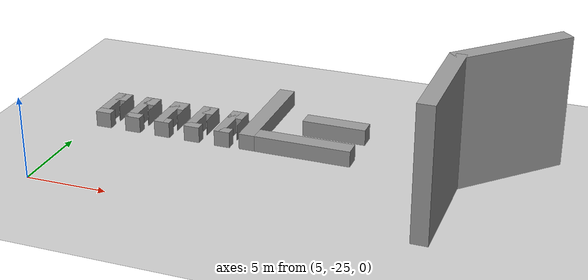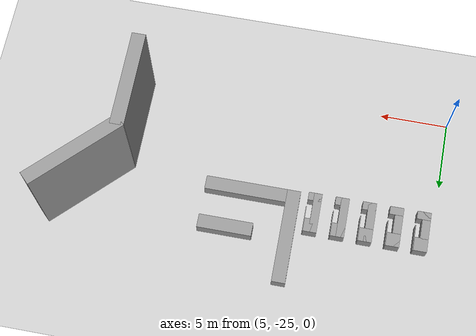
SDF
<sdf version="1.6">
 <world name="default">
  <model name="ground_plane">
   <static>1</static>
   <link name="link">
    <collision name="collision">
     <geometry><plane><normal>0 0 1</normal><size>100 100</size></plane></geometry>
     <surface>
      <contact><collide_bitmask>65535</collide_bitmask></contact>
      <friction><ode><mu>100</mu><mu2>50</mu2></ode></friction>
     </surface>
    </collision>
    <visual name="visual">
     <cast_shadows>0</cast_shadows>
     <geometry><plane><normal>0 0 1</normal><size>100 100</size></plane></geometry>
     <material>
      <script><uri>file://media/materials/scripts/gazebo.material</uri><name>Gazebo/Grey</name></script>
     </material>
    </visual>
   </link>
  </model>
  <model name="Cube_6">
   <link name="link_1">
    <inertial>
     <mass>1</mass>
     <inertia>
      <ixx>0.166667</ixx>
      <ixy>0</ixy>
      <ixz>0</ixz>
      <iyy>0.166667</iyy>
      <iyz>0</iyz>
      <izz>0.166667</izz>
     </inertia>
    </inertial>
    <visual name="visual">
     <geometry><box><size>1 7 1</size></box></geometry>
     <material>
      <lighting>1</lighting>
      <script><uri>file://media/materials/scripts/gazebo.material</uri><name>Gazebo/Grey</name></script>
     </material>
    </visual>
    <collision name="collision">
     <geometry><box><size>1 7 1</size></box></geometry>
     <surface>
      <friction>
       <ode><mu>1</mu><mu2>1</mu2><fdir1>0 0 0</fdir1><slip1>0</slip1><slip2>0</slip2></ode>
       <torsional>
        <coefficient>1</coefficient>
        <patch_radius>0</patch_radius>
        <surface_radius>0</surface_radius>
        <use_patch_radius>1</use_patch_radius>
        <ode><slip>0</slip></ode>
       </torsional>
      </friction>
      <bounce><restitution_coefficient>0</restitution_coefficient><threshold>1e+06</threshold></bounce>
      <contact>
       <collide_without_contact>0</collide_without_contact>
       <collide_without_contact_bitmask>1</collide_without_contact_bitmask>
       <collide_bitmask>1</collide_bitmask>
       <ode>
        <soft_cfm>0</soft_cfm>
        <soft_erp>0.2</soft_erp>
        <kp>1e+13</kp>
        <kd>1</kd>
        <max_vel>0.01</max_vel>
        <min_depth>0</min_depth>
       </ode>
       <bullet>
        <split_impulse>1</split_impulse>
        <split_impulse_penetration_threshold>-0.01</split_impulse_penetration_threshold>
        <soft_cfm>0</soft_cfm>
        <soft_erp>0.2</soft_erp>
        <kp>1e+13</kp>
        <kd>1</kd>
       </bullet>
      </contact>
     </surface>
    </collision>
   </link>
   <static>1</static>
   <pose>15.5012 -14 0.499811 0 -0 0</pose>
  </model>
  <model name="Cube_6_clone">
   <link name="link_1">
    <inertial>
     <mass>1</mass>
     <inertia>
      <ixx>0.166667</ixx>
      <ixy>0</ixy>
      <ixz>0</ixz>
      <iyy>0.166667</iyy>
      <iyz>0</iyz>
      <izz>0.166667</izz>
     </inertia>
    </inertial>
    <visual name="visual">
     <geometry><box><size>1 6.00505 1</size></box></geometry>
     <material>
      <lighting>1</lighting>
      <script><uri>file://media/materials/scripts/gazebo.material</uri><name>Gazebo/Grey</name></script>
     </material>
    </visual>
    <collision name="collision">
     <geometry><box><size>1 6.00505 1</size></box></geometry>
     <surface>
      <friction>
       <ode><mu>1</mu><mu2>1</mu2><fdir1>0 0 0</fdir1><slip1>0</slip1><slip2>0</slip2></ode>
       <torsional>
        <coefficient>1</coefficient>
        <patch_radius>0</patch_radius>
        <surface_radius>0</surface_radius>
        <use_patch_radius>1</use_patch_radius>
        <ode><slip>0</slip></ode>
       </torsional>
      </friction>
      <bounce><restitution_coefficient>0</restitution_coefficient><threshold>1e+06</threshold></bounce>
      <contact>
       <collide_without_contact>0</collide_without_contact>
       <collide_without_contact_bitmask>1</collide_without_contact_bitmask>
       <collide_bitmask>1</collide_bitmask>
       <ode>
        <soft_cfm>0</soft_cfm>
        <soft_erp>0.2</soft_erp>
        <kp>1e+13</kp>
        <kd>1</kd>
        <max_vel>0.01</max_vel>
        <min_depth>0</min_depth>
       </ode>
       <bullet>
        <split_impulse>1</split_impulse>
        <split_impulse_penetration_threshold>-0.01</split_impulse_penetration_threshold>
        <soft_cfm>0</soft_cfm>
        <soft_erp>0.2</soft_erp>
        <kp>1e+13</kp>
        <kd>1</kd>
       </bullet>
      </contact>
     </surface>
    </collision>
   </link>
   <static>1</static>
   <pose>19 -17 0.499811 0 0 -1.5708</pose>
  </model>
  <model name="Cube_7">
   <link name="link_1">
    <inertial>
     <mass>1</mass>
     <inertia>
      <ixx>0.166667</ixx>
      <ixy>0</ixy>
      <ixz>0</ixz>
      <iyy>0.166667</iyy>
      <iyz>0</iyz>
      <izz>0.166667</izz>
     </inertia>
    </inertial>
    <visual name="visual">
     <geometry><box><size>4 1 1</size></box></geometry>
     <material>
      <lighting>1</lighting>
      <script><uri>file://media/materials/scripts/gazebo.material</uri><name>Gazebo/Grey</name></script>
     </material>
    </visual>
    <collision name="collision">
     <geometry><box><size>4 1 1</size></box></geometry>
     <surface>
      <friction>
       <ode><mu>1</mu><mu2>1</mu2><fdir1>0 0 0</fdir1><slip1>0</slip1><slip2>0</slip2></ode>
       <torsional>
        <coefficient>1</coefficient>
        <patch_radius>0</patch_radius>
        <surface_radius>0</surface_radius>
        <use_patch_radius>1</use_patch_radius>
        <ode><slip>0</slip></ode>
       </torsional>
      </friction>
      <bounce><restitution_coefficient>0</restitution_coefficient><threshold>1e+06</threshold></bounce>
      <contact>
       <collide_without_contact>0</collide_without_contact>
       <collide_without_contact_bitmask>1</collide_without_contact_bitmask>
       <collide_bitmask>1</collide_bitmask>
       <ode>
        <soft_cfm>0</soft_cfm>
        <soft_erp>0.2</soft_erp>
        <kp>1e+13</kp>
        <kd>1</kd>
        <max_vel>0.01</max_vel>
        <min_depth>0</min_depth>
       </ode>
       <bullet>
        <split_impulse>1</split_impulse>
        <split_impulse_penetration_threshold>-0.01</split_impulse_penetration_threshold>
        <soft_cfm>0</soft_cfm>
        <soft_erp>0.2</soft_erp>
        <kp>1e+13</kp>
        <kd>1</kd>
       </bullet>
      </contact>
     </surface>
    </collision>
   </link>
   <static>1</static>
   <pose>20 -14 0.498057 0 -0 0</pose>
  </model>
  <model name="tall_shelf_0_clone">
   <link name="link_0">
    <inertial>
     <mass>32</mass>
     <inertia><ixx>45.3334</ixx><ixy>0</ixy><ixz>0</ixz><iyy>213.334</iyy><iyz>0</iyz><izz>173.334</izz></inertia>
    </inertial>
    <visual name="visual">
     <geometry><box><size>6.99933 1 8</size></box></geometry>
     <material>
      <lighting>1</lighting>
      <script><uri>file://media/materials/scripts/gazebo.material</uri><name>Gazebo/Grey</name></script>
     </material>
    </visual>
    <collision name="collision">
     <geometry><box><size>6.99933 1 8</size></box></geometry>
     <surface>
      <friction>
       <ode><mu>1</mu><mu2>1</mu2><fdir1>0 0 0</fdir1><slip1>0</slip1><slip2>0</slip2></ode>
       <torsional>
        <coefficient>1</coefficient>
        <patch_radius>0</patch_radius>
        <surface_radius>0</surface_radius>
        <use_patch_radius>1</use_patch_radius>
        <ode><slip>0</slip></ode>
       </torsional>
      </friction>
      <bounce><restitution_coefficient>0</restitution_coefficient><threshold>1e+06</threshold></bounce>
      <contact>
       <collide_without_contact>0</collide_without_contact>
       <collide_without_contact_bitmask>1</collide_without_contact_bitmask>
       <collide_bitmask>1</collide_bitmask>
       <ode>
        <soft_cfm>0</soft_cfm>
        <soft_erp>0.2</soft_erp>
        <kp>1e+13</kp>
        <kd>1</kd>
        <max_vel>0.01</max_vel>
        <min_depth>0</min_depth>
       </ode>
       <bullet>
        <split_impulse>1</split_impulse>
        <split_impulse_penetration_threshold>-0.01</split_impulse_penetration_threshold>
        <soft_cfm>0</soft_cfm>
        <soft_erp>0.2</soft_erp>
        <kp>1e+13</kp>
        <kd>1</kd>
       </bullet>
      </contact>
     </surface>
    </collision>
   </link>
   <static>1</static>
   <pose>28 -21 4 0 0 -1.5708</pose>
  </model>
  <model name="tall_shelf_0_clone_clone">
   <link name="link_0">
    <inertial>
     <mass>32</mass>
     <inertia><ixx>45.3334</ixx><ixy>0</ixy><ixz>0</ixz><iyy>213.334</iyy><iyz>0</iyz><izz>173.334</izz></inertia>
    </inertial>
    <visual name="visual">
     <geometry><box><size>7.49195 1 8</size></box></geometry>
     <material>
      <lighting>1</lighting>
      <script><uri>file://media/materials/scripts/gazebo.material</uri><name>Gazebo/Grey</name></script>
     </material>
    </visual>
    <collision name="collision">
     <geometry><box><size>7.49195 1 8</size></box></geometry>
     <surface>
      <friction>
       <ode><mu>1</mu><mu2>1</mu2><fdir1>0 0 0</fdir1><slip1>0</slip1><slip2>0</slip2></ode>
       <torsional>
        <coefficient>1</coefficient>
        <patch_radius>0</patch_radius>
        <surface_radius>0</surface_radius>
        <use_patch_radius>1</use_patch_radius>
        <ode><slip>0</slip></ode>
       </torsional>
      </friction>
      <bounce><restitution_coefficient>0</restitution_coefficient><threshold>1e+06</threshold></bounce>
      <contact>
       <collide_without_contact>0</collide_without_contact>
       <collide_without_contact_bitmask>1</collide_without_contact_bitmask>
       <collide_bitmask>1</collide_bitmask>
       <ode>
        <soft_cfm>0</soft_cfm>
        <soft_erp>0.2</soft_erp>
        <kp>1e+13</kp>
        <kd>1</kd>
        <max_vel>0.01</max_vel>
        <min_depth>0</min_depth>
       </ode>
       <bullet>
        <split_impulse>1</split_impulse>
        <split_impulse_penetration_threshold>-0.01</split_impulse_penetration_threshold>
        <soft_cfm>0</soft_cfm>
        <soft_erp>0.2</soft_erp>
        <kp>1e+13</kp>
        <kd>1</kd>
       </bullet>
      </contact>
     </surface>
    </collision>
   </link>
   <static>1</static>
   <pose>30.4899 -15.2274 4 0 0 -2.3562</pose>
  </model>
  <model name="checkout_lane">
   <link name="link_0">
    <inertial>
     <mass>1.78918</mass>
     <inertia><ixx>1.49098</ixx><ixy>0</ixy><ixz>0</ixz><iyy>0.202135</iyy><iyz>0</iyz><izz>1.39492</izz></inertia>
    </inertial>
    <pose>-0.28217 -0.089875 0 0 -0 0</pose>
    <visual name="visual">
     <geometry><box><size>0.596422 3 1</size></box></geometry>
     <material>
      <lighting>1</lighting>
      <script><uri>file://media/materials/scripts/gazebo.material</uri><name>Gazebo/Grey</name></script>
     </material>
    </visual>
    <collision name="collision">
     <geometry><box><size>0.596422 3 1</size></box></geometry>
     <surface>
      <friction>
       <ode><mu>1</mu><mu2>1</mu2><fdir1>0 0 0</fdir1><slip1>0</slip1><slip2>0</slip2></ode>
       <torsional>
        <coefficient>1</coefficient>
        <patch_radius>0</patch_radius>
        <surface_radius>0</surface_radius>
        <use_patch_radius>1</use_patch_radius>
        <ode><slip>0</slip></ode>
       </torsional>
      </friction>
      <bounce><restitution_coefficient>0</restitution_coefficient><threshold>1e+06</threshold></bounce>
      <contact>
       <collide_without_contact>0</collide_without_contact>
       <collide_without_contact_bitmask>1</collide_without_contact_bitmask>
       <collide_bitmask>1</collide_bitmask>
       <ode>
        <soft_cfm>0</soft_cfm>
        <soft_erp>0.2</soft_erp>
        <kp>1e+13</kp>
        <kd>1</kd>
        <max_vel>0.01</max_vel>
        <min_depth>0</min_depth>
       </ode>
       <bullet>
        <split_impulse>1</split_impulse>
        <split_impulse_penetration_threshold>-0.01</split_impulse_penetration_threshold>
        <soft_cfm>0</soft_cfm>
        <soft_erp>0.2</soft_erp>
        <kp>1e+13</kp>
        <kd>1</kd>
       </bullet>
      </contact>
     </surface>
    </collision>
   </link>
   <link name="link_1">
    <inertial>
     <mass>0.599725</mass>
     <inertia>
      <ixx>0.067952</ixx>
      <ixy>0</ixy>
      <ixz>0</ixz>
      <iyy>0.0999541</iyy>
      <iyz>0</iyz>
      <izz>0.067952</izz>
     </inertia>
    </inertial>
    <pose>-0.080941 -1.29052 0 0 -0 0</pose>
    <visual name="visual">
     <geometry><box><size>1 0.599721 1</size></box></geometry>
     <material>
      <lighting>1</lighting>
      <script><uri>file://media/materials/scripts/gazebo.material</uri><name>Gazebo/Grey</name></script>
     </material>
    </visual>
    <collision name="collision">
     <geometry><box><size>1 0.599721 1</size></box></geometry>
     <surface>
      <friction>
       <ode><mu>1</mu><mu2>1</mu2><fdir1>0 0 0</fdir1><slip1>0</slip1><slip2>0</slip2></ode>
       <torsional>
        <coefficient>1</coefficient>
        <patch_radius>0</patch_radius>
        <surface_radius>0</surface_radius>
        <use_patch_radius>1</use_patch_radius>
        <ode><slip>0</slip></ode>
       </torsional>
      </friction>
      <bounce><restitution_coefficient>0</restitution_coefficient><threshold>1e+06</threshold></bounce>
      <contact>
       <collide_without_contact>0</collide_without_contact>
       <collide_without_contact_bitmask>1</collide_without_contact_bitmask>
       <collide_bitmask>1</collide_bitmask>
       <ode>
        <soft_cfm>0</soft_cfm>
        <soft_erp>0.2</soft_erp>
        <kp>1e+13</kp>
        <kd>1</kd>
        <max_vel>0.01</max_vel>
        <min_depth>0</min_depth>
       </ode>
       <bullet>
        <split_impulse>1</split_impulse>
        <split_impulse_penetration_threshold>-0.01</split_impulse_penetration_threshold>
        <soft_cfm>0</soft_cfm>
        <soft_erp>0.2</soft_erp>
        <kp>1e+13</kp>
        <kd>1</kd>
       </bullet>
      </contact>
     </surface>
    </collision>
   </link>
   <link name="link_2">
    <inertial>
     <mass>1</mass>
     <inertia>
      <ixx>0.166667</ixx>
      <ixy>0</ixy>
      <ixz>0</ixz>
      <iyy>0.166667</iyy>
      <iyz>0</iyz>
      <izz>0.166667</izz>
     </inertia>
    </inertial>
    <pose>-0.079867 0.912971 0 0 -0 0</pose>
    <visual name="visual">
     <geometry><box><size>1 1 1</size></box></geometry>
     <material>
      <lighting>1</lighting>
      <script><uri>file://media/materials/scripts/gazebo.material</uri><name>Gazebo/Grey</name></script>
     </material>
    </visual>
    <collision name="collision">
     <geometry><box><size>1 1 1</size></box></geometry>
     <surface>
      <friction>
       <ode><mu>1</mu><mu2>1</mu2><fdir1>0 0 0</fdir1><slip1>0</slip1><slip2>0</slip2></ode>
       <torsional>
        <coefficient>1</coefficient>
        <patch_radius>0</patch_radius>
        <surface_radius>0</surface_radius>
        <use_patch_radius>1</use_patch_radius>
        <ode><slip>0</slip></ode>
       </torsional>
      </friction>
      <bounce><restitution_coefficient>0</restitution_coefficient><threshold>1e+06</threshold></bounce>
      <contact>
       <collide_without_contact>0</collide_without_contact>
       <collide_without_contact_bitmask>1</collide_without_contact_bitmask>
       <collide_bitmask>1</collide_bitmask>
       <ode>
        <soft_cfm>0</soft_cfm>
        <soft_erp>0.2</soft_erp>
        <kp>1e+13</kp>
        <kd>1</kd>
        <max_vel>0.01</max_vel>
        <min_depth>0</min_depth>
       </ode>
       <bullet>
        <split_impulse>1</split_impulse>
        <split_impulse_penetration_threshold>-0.01</split_impulse_penetration_threshold>
        <soft_cfm>0</soft_cfm>
        <soft_erp>0.2</soft_erp>
        <kp>1e+13</kp>
        <kd>1</kd>
       </bullet>
      </contact>
     </surface>
    </collision>
   </link>
   <link name="link_3">
    <inertial>
     <mass>0.0872941</mass>
     <inertia>
      <ixx>0.0332862</ixx>
      <ixy>0</ixy>
      <ixz>0</ixz>
      <iyy>0.00729008</iyy>
      <iyz>0</iyz>
      <izz>0.0260273</izz>
     </inertia>
    </inertial>
    <pose>0.442979 0.467403 0 0 -0 0</pose>
    <visual name="visual">
     <geometry><box><size>0.046273 1.89096 1</size></box></geometry>
     <material>
      <lighting>1</lighting>
      <script><uri>file://media/materials/scripts/gazebo.material</uri><name>Gazebo/Grey</name></script>
     </material>
    </visual>
    <collision name="collision">
     <geometry><box><size>0.046273 1.89096 1</size></box></geometry>
     <surface>
      <friction>
       <ode><mu>1</mu><mu2>1</mu2><fdir1>0 0 0</fdir1><slip1>0</slip1><slip2>0</slip2></ode>
       <torsional>
        <coefficient>1</coefficient>
        <patch_radius>0</patch_radius>
        <surface_radius>0</surface_radius>
        <use_patch_radius>1</use_patch_radius>
        <ode><slip>0</slip></ode>
       </torsional>
      </friction>
      <bounce><restitution_coefficient>0</restitution_coefficient><threshold>1e+06</threshold></bounce>
      <contact>
       <collide_without_contact>0</collide_without_contact>
       <collide_without_contact_bitmask>1</collide_without_contact_bitmask>
       <collide_bitmask>1</collide_bitmask>
       <ode>
        <soft_cfm>0</soft_cfm>
        <soft_erp>0.2</soft_erp>
        <kp>1e+13</kp>
        <kd>1</kd>
        <max_vel>0.01</max_vel>
        <min_depth>0</min_depth>
       </ode>
       <bullet>
        <split_impulse>1</split_impulse>
        <split_impulse_penetration_threshold>-0.01</split_impulse_penetration_threshold>
        <soft_cfm>0</soft_cfm>
        <soft_erp>0.2</soft_erp>
        <kp>1e+13</kp>
        <kd>1</kd>
       </bullet>
      </contact>
     </surface>
    </collision>
   </link>
   <static>1</static>
   <pose>14 -16 0.5 0 -0 0</pose>
  </model>
  <model name="checkout_lane_clone">
   <link name="link_0">
    <inertial>
     <mass>1.78918</mass>
     <inertia><ixx>1.49098</ixx><ixy>0</ixy><ixz>0</ixz><iyy>0.202135</iyy><iyz>0</iyz><izz>1.39492</izz></inertia>
    </inertial>
    <pose>-0.28217 -0.089875 0 0 -0 0</pose>
    <visual name="visual">
     <geometry><box><size>0.596422 3 1</size></box></geometry>
     <material>
      <lighting>1</lighting>
      <script><uri>file://media/materials/scripts/gazebo.material</uri><name>Gazebo/Grey</name></script>
     </material>
    </visual>
    <collision name="collision">
     <geometry><box><size>0.596422 3 1</size></box></geometry>
     <surface>
      <friction>
       <ode><mu>1</mu><mu2>1</mu2><fdir1>0 0 0</fdir1><slip1>0</slip1><slip2>0</slip2></ode>
       <torsional>
        <coefficient>1</coefficient>
        <patch_radius>0</patch_radius>
        <surface_radius>0</surface_radius>
        <use_patch_radius>1</use_patch_radius>
        <ode><slip>0</slip></ode>
       </torsional>
      </friction>
      <bounce><restitution_coefficient>0</restitution_coefficient><threshold>1e+06</threshold></bounce>
      <contact>
       <collide_without_contact>0</collide_without_contact>
       <collide_without_contact_bitmask>1</collide_without_contact_bitmask>
       <collide_bitmask>1</collide_bitmask>
       <ode>
        <soft_cfm>0</soft_cfm>
        <soft_erp>0.2</soft_erp>
        <kp>1e+13</kp>
        <kd>1</kd>
        <max_vel>0.01</max_vel>
        <min_depth>0</min_depth>
       </ode>
       <bullet>
        <split_impulse>1</split_impulse>
        <split_impulse_penetration_threshold>-0.01</split_impulse_penetration_threshold>
        <soft_cfm>0</soft_cfm>
        <soft_erp>0.2</soft_erp>
        <kp>1e+13</kp>
        <kd>1</kd>
       </bullet>
      </contact>
     </surface>
    </collision>
   </link>
   <link name="link_1">
    <inertial>
     <mass>0.599725</mass>
     <inertia>
      <ixx>0.067952</ixx>
      <ixy>0</ixy>
      <ixz>0</ixz>
      <iyy>0.0999541</iyy>
      <iyz>0</iyz>
      <izz>0.067952</izz>
     </inertia>
    </inertial>
    <pose>-0.080941 -1.29052 0 0 -0 0</pose>
    <visual name="visual">
     <geometry><box><size>1 0.599721 1</size></box></geometry>
     <material>
      <lighting>1</lighting>
      <script><uri>file://media/materials/scripts/gazebo.material</uri><name>Gazebo/Grey</name></script>
     </material>
    </visual>
    <collision name="collision">
     <geometry><box><size>1 0.599721 1</size></box></geometry>
     <surface>
      <friction>
       <ode><mu>1</mu><mu2>1</mu2><fdir1>0 0 0</fdir1><slip1>0</slip1><slip2>0</slip2></ode>
       <torsional>
        <coefficient>1</coefficient>
        <patch_radius>0</patch_radius>
        <surface_radius>0</surface_radius>
        <use_patch_radius>1</use_patch_radius>
        <ode><slip>0</slip></ode>
       </torsional>
      </friction>
      <bounce><restitution_coefficient>0</restitution_coefficient><threshold>1e+06</threshold></bounce>
      <contact>
       <collide_without_contact>0</collide_without_contact>
       <collide_without_contact_bitmask>1</collide_without_contact_bitmask>
       <collide_bitmask>1</collide_bitmask>
       <ode>
        <soft_cfm>0</soft_cfm>
        <soft_erp>0.2</soft_erp>
        <kp>1e+13</kp>
        <kd>1</kd>
        <max_vel>0.01</max_vel>
        <min_depth>0</min_depth>
       </ode>
       <bullet>
        <split_impulse>1</split_impulse>
        <split_impulse_penetration_threshold>-0.01</split_impulse_penetration_threshold>
        <soft_cfm>0</soft_cfm>
        <soft_erp>0.2</soft_erp>
        <kp>1e+13</kp>
        <kd>1</kd>
       </bullet>
      </contact>
     </surface>
    </collision>
   </link>
   <link name="link_2">
    <inertial>
     <mass>1</mass>
     <inertia>
      <ixx>0.166667</ixx>
      <ixy>0</ixy>
      <ixz>0</ixz>
      <iyy>0.166667</iyy>
      <iyz>0</iyz>
      <izz>0.166667</izz>
     </inertia>
    </inertial>
    <pose>-0.079867 0.912971 0 0 -0 0</pose>
    <visual name="visual">
     <geometry><box><size>1 1 1</size></box></geometry>
     <material>
      <lighting>1</lighting>
      <script><uri>file://media/materials/scripts/gazebo.material</uri><name>Gazebo/Grey</name></script>
     </material>
    </visual>
    <collision name="collision">
     <geometry><box><size>1 1 1</size></box></geometry>
     <surface>
      <friction>
       <ode><mu>1</mu><mu2>1</mu2><fdir1>0 0 0</fdir1><slip1>0</slip1><slip2>0</slip2></ode>
       <torsional>
        <coefficient>1</coefficient>
        <patch_radius>0</patch_radius>
        <surface_radius>0</surface_radius>
        <use_patch_radius>1</use_patch_radius>
        <ode><slip>0</slip></ode>
       </torsional>
      </friction>
      <bounce><restitution_coefficient>0</restitution_coefficient><threshold>1e+06</threshold></bounce>
      <contact>
       <collide_without_contact>0</collide_without_contact>
       <collide_without_contact_bitmask>1</collide_without_contact_bitmask>
       <collide_bitmask>1</collide_bitmask>
       <ode>
        <soft_cfm>0</soft_cfm>
        <soft_erp>0.2</soft_erp>
        <kp>1e+13</kp>
        <kd>1</kd>
        <max_vel>0.01</max_vel>
        <min_depth>0</min_depth>
       </ode>
       <bullet>
        <split_impulse>1</split_impulse>
        <split_impulse_penetration_threshold>-0.01</split_impulse_penetration_threshold>
        <soft_cfm>0</soft_cfm>
        <soft_erp>0.2</soft_erp>
        <kp>1e+13</kp>
        <kd>1</kd>
       </bullet>
      </contact>
     </surface>
    </collision>
   </link>
   <link name="link_3">
    <inertial>
     <mass>0.0872941</mass>
     <inertia>
      <ixx>0.0332862</ixx>
      <ixy>0</ixy>
      <ixz>0</ixz>
      <iyy>0.00729008</iyy>
      <iyz>0</iyz>
      <izz>0.0260273</izz>
     </inertia>
    </inertial>
    <pose>0.442979 0.467403 0 0 -0 0</pose>
    <visual name="visual">
     <geometry><box><size>0.046273 1.89096 1</size></box></geometry>
     <material>
      <lighting>1</lighting>
      <script><uri>file://media/materials/scripts/gazebo.material</uri><name>Gazebo/Grey</name></script>
     </material>
    </visual>
    <collision name="collision">
     <geometry><box><size>0.046273 1.89096 1</size></box></geometry>
     <surface>
      <friction>
       <ode><mu>1</mu><mu2>1</mu2><fdir1>0 0 0</fdir1><slip1>0</slip1><slip2>0</slip2></ode>
       <torsional>
        <coefficient>1</coefficient>
        <patch_radius>0</patch_radius>
        <surface_radius>0</surface_radius>
        <use_patch_radius>1</use_patch_radius>
        <ode><slip>0</slip></ode>
       </torsional>
      </friction>
      <bounce><restitution_coefficient>0</restitution_coefficient><threshold>1e+06</threshold></bounce>
      <contact>
       <collide_without_contact>0</collide_without_contact>
       <collide_without_contact_bitmask>1</collide_without_contact_bitmask>
       <collide_bitmask>1</collide_bitmask>
       <ode>
        <soft_cfm>0</soft_cfm>
        <soft_erp>0.2</soft_erp>
        <kp>1e+13</kp>
        <kd>1</kd>
        <max_vel>0.01</max_vel>
        <min_depth>0</min_depth>
       </ode>
       <bullet>
        <split_impulse>1</split_impulse>
        <split_impulse_penetration_threshold>-0.01</split_impulse_penetration_threshold>
        <soft_cfm>0</soft_cfm>
        <soft_erp>0.2</soft_erp>
        <kp>1e+13</kp>
        <kd>1</kd>
       </bullet>
      </contact>
     </surface>
    </collision>
   </link>
   <static>1</static>
   <pose>12 -16 0.5 0 -0 0</pose>
  </model>
  <model name="checkout_lane_clone_0">
   <link name="link_0">
    <inertial>
     <mass>1.78918</mass>
     <inertia><ixx>1.49098</ixx><ixy>0</ixy><ixz>0</ixz><iyy>0.202135</iyy><iyz>0</iyz><izz>1.39492</izz></inertia>
    </inertial>
    <pose>-0.28217 -0.089875 0 0 -0 0</pose>
    <visual name="visual">
     <geometry><box><size>0.596422 3 1</size></box></geometry>
     <material>
      <lighting>1</lighting>
      <script><uri>file://media/materials/scripts/gazebo.material</uri><name>Gazebo/Grey</name></script>
     </material>
    </visual>
    <collision name="collision">
     <geometry><box><size>0.596422 3 1</size></box></geometry>
     <surface>
      <friction>
       <ode><mu>1</mu><mu2>1</mu2><fdir1>0 0 0</fdir1><slip1>0</slip1><slip2>0</slip2></ode>
       <torsional>
        <coefficient>1</coefficient>
        <patch_radius>0</patch_radius>
        <surface_radius>0</surface_radius>
        <use_patch_radius>1</use_patch_radius>
        <ode><slip>0</slip></ode>
       </torsional>
      </friction>
      <bounce><restitution_coefficient>0</restitution_coefficient><threshold>1e+06</threshold></bounce>
      <contact>
       <collide_without_contact>0</collide_without_contact>
       <collide_without_contact_bitmask>1</collide_without_contact_bitmask>
       <collide_bitmask>1</collide_bitmask>
       <ode>
        <soft_cfm>0</soft_cfm>
        <soft_erp>0.2</soft_erp>
        <kp>1e+13</kp>
        <kd>1</kd>
        <max_vel>0.01</max_vel>
        <min_depth>0</min_depth>
       </ode>
       <bullet>
        <split_impulse>1</split_impulse>
        <split_impulse_penetration_threshold>-0.01</split_impulse_penetration_threshold>
        <soft_cfm>0</soft_cfm>
        <soft_erp>0.2</soft_erp>
        <kp>1e+13</kp>
        <kd>1</kd>
       </bullet>
      </contact>
     </surface>
    </collision>
   </link>
   <link name="link_1">
    <inertial>
     <mass>0.599725</mass>
     <inertia>
      <ixx>0.067952</ixx>
      <ixy>0</ixy>
      <ixz>0</ixz>
      <iyy>0.0999541</iyy>
      <iyz>0</iyz>
      <izz>0.067952</izz>
     </inertia>
    </inertial>
    <pose>-0.080941 -1.29052 0 0 -0 0</pose>
    <visual name="visual">
     <geometry><box><size>1 0.599721 1</size></box></geometry>
     <material>
      <lighting>1</lighting>
      <script><uri>file://media/materials/scripts/gazebo.material</uri><name>Gazebo/Grey</name></script>
     </material>
    </visual>
    <collision name="collision">
     <geometry><box><size>1 0.599721 1</size></box></geometry>
     <surface>
      <friction>
       <ode><mu>1</mu><mu2>1</mu2><fdir1>0 0 0</fdir1><slip1>0</slip1><slip2>0</slip2></ode>
       <torsional>
        <coefficient>1</coefficient>
        <patch_radius>0</patch_radius>
        <surface_radius>0</surface_radius>
        <use_patch_radius>1</use_patch_radius>
        <ode><slip>0</slip></ode>
       </torsional>
      </friction>
      <bounce><restitution_coefficient>0</restitution_coefficient><threshold>1e+06</threshold></bounce>
      <contact>
       <collide_without_contact>0</collide_without_contact>
       <collide_without_contact_bitmask>1</collide_without_contact_bitmask>
       <collide_bitmask>1</collide_bitmask>
       <ode>
        <soft_cfm>0</soft_cfm>
        <soft_erp>0.2</soft_erp>
        <kp>1e+13</kp>
        <kd>1</kd>
        <max_vel>0.01</max_vel>
        <min_depth>0</min_depth>
       </ode>
       <bullet>
        <split_impulse>1</split_impulse>
        <split_impulse_penetration_threshold>-0.01</split_impulse_penetration_threshold>
        <soft_cfm>0</soft_cfm>
        <soft_erp>0.2</soft_erp>
        <kp>1e+13</kp>
        <kd>1</kd>
       </bullet>
      </contact>
     </surface>
    </collision>
   </link>
   <link name="link_2">
    <inertial>
     <mass>1</mass>
     <inertia>
      <ixx>0.166667</ixx>
      <ixy>0</ixy>
      <ixz>0</ixz>
      <iyy>0.166667</iyy>
      <iyz>0</iyz>
      <izz>0.166667</izz>
     </inertia>
    </inertial>
    <pose>-0.079867 0.912971 0 0 -0 0</pose>
    <visual name="visual">
     <geometry><box><size>1 1 1</size></box></geometry>
     <material>
      <lighting>1</lighting>
      <script><uri>file://media/materials/scripts/gazebo.material</uri><name>Gazebo/Grey</name></script>
     </material>
    </visual>
    <collision name="collision">
     <geometry><box><size>1 1 1</size></box></geometry>
     <surface>
      <friction>
       <ode><mu>1</mu><mu2>1</mu2><fdir1>0 0 0</fdir1><slip1>0</slip1><slip2>0</slip2></ode>
       <torsional>
        <coefficient>1</coefficient>
        <patch_radius>0</patch_radius>
        <surface_radius>0</surface_radius>
        <use_patch_radius>1</use_patch_radius>
        <ode><slip>0</slip></ode>
       </torsional>
      </friction>
      <bounce><restitution_coefficient>0</restitution_coefficient><threshold>1e+06</threshold></bounce>
      <contact>
       <collide_without_contact>0</collide_without_contact>
       <collide_without_contact_bitmask>1</collide_without_contact_bitmask>
       <collide_bitmask>1</collide_bitmask>
       <ode>
        <soft_cfm>0</soft_cfm>
        <soft_erp>0.2</soft_erp>
        <kp>1e+13</kp>
        <kd>1</kd>
        <max_vel>0.01</max_vel>
        <min_depth>0</min_depth>
       </ode>
       <bullet>
        <split_impulse>1</split_impulse>
        <split_impulse_penetration_threshold>-0.01</split_impulse_penetration_threshold>
        <soft_cfm>0</soft_cfm>
        <soft_erp>0.2</soft_erp>
        <kp>1e+13</kp>
        <kd>1</kd>
       </bullet>
      </contact>
     </surface>
    </collision>
   </link>
   <link name="link_3">
    <inertial>
     <mass>0.0872941</mass>
     <inertia>
      <ixx>0.0332862</ixx>
      <ixy>0</ixy>
      <ixz>0</ixz>
      <iyy>0.00729008</iyy>
      <iyz>0</iyz>
      <izz>0.0260273</izz>
     </inertia>
    </inertial>
    <pose>0.442979 0.467403 0 0 -0 0</pose>
    <visual name="visual">
     <geometry><box><size>0.046273 1.89096 1</size></box></geometry>
     <material>
      <lighting>1</lighting>
      <script><uri>file://media/materials/scripts/gazebo.material</uri><name>Gazebo/Grey</name></script>
     </material>
    </visual>
    <collision name="collision">
     <geometry><box><size>0.046273 1.89096 1</size></box></geometry>
     <surface>
      <friction>
       <ode><mu>1</mu><mu2>1</mu2><fdir1>0 0 0</fdir1><slip1>0</slip1><slip2>0</slip2></ode>
       <torsional>
        <coefficient>1</coefficient>
        <patch_radius>0</patch_radius>
        <surface_radius>0</surface_radius>
        <use_patch_radius>1</use_patch_radius>
        <ode><slip>0</slip></ode>
       </torsional>
      </friction>
      <bounce><restitution_coefficient>0</restitution_coefficient><threshold>1e+06</threshold></bounce>
      <contact>
       <collide_without_contact>0</collide_without_contact>
       <collide_without_contact_bitmask>1</collide_without_contact_bitmask>
       <collide_bitmask>1</collide_bitmask>
       <ode>
        <soft_cfm>0</soft_cfm>
        <soft_erp>0.2</soft_erp>
        <kp>1e+13</kp>
        <kd>1</kd>
        <max_vel>0.01</max_vel>
        <min_depth>0</min_depth>
       </ode>
       <bullet>
        <split_impulse>1</split_impulse>
        <split_impulse_penetration_threshold>-0.01</split_impulse_penetration_threshold>
        <soft_cfm>0</soft_cfm>
        <soft_erp>0.2</soft_erp>
        <kp>1e+13</kp>
        <kd>1</kd>
       </bullet>
      </contact>
     </surface>
    </collision>
   </link>
   <static>1</static>
   <pose>10 -16 0.5 0 -0 0</pose>
  </model>
  <model name="checkout_lane_clone_1">
   <link name="link_0">
    <inertial>
     <mass>1.78918</mass>
     <inertia><ixx>1.49098</ixx><ixy>0</ixy><ixz>0</ixz><iyy>0.202135</iyy><iyz>0</iyz><izz>1.39492</izz></inertia>
    </inertial>
    <pose>-0.28217 -0.089875 0 0 -0 0</pose>
    <visual name="visual">
     <geometry><box><size>0.596422 3 1</size></box></geometry>
     <material>
      <lighting>1</lighting>
      <script><uri>file://media/materials/scripts/gazebo.material</uri><name>Gazebo/Grey</name></script>
     </material>
    </visual>
    <collision name="collision">
     <geometry><box><size>0.596422 3 1</size></box></geometry>
     <surface>
      <friction>
       <ode><mu>1</mu><mu2>1</mu2><fdir1>0 0 0</fdir1><slip1>0</slip1><slip2>0</slip2></ode>
       <torsional>
        <coefficient>1</coefficient>
        <patch_radius>0</patch_radius>
        <surface_radius>0</surface_radius>
        <use_patch_radius>1</use_patch_radius>
        <ode><slip>0</slip></ode>
       </torsional>
      </friction>
      <bounce><restitution_coefficient>0</restitution_coefficient><threshold>1e+06</threshold></bounce>
      <contact>
       <collide_without_contact>0</collide_without_contact>
       <collide_without_contact_bitmask>1</collide_without_contact_bitmask>
       <collide_bitmask>1</collide_bitmask>
       <ode>
        <soft_cfm>0</soft_cfm>
        <soft_erp>0.2</soft_erp>
        <kp>1e+13</kp>
        <kd>1</kd>
        <max_vel>0.01</max_vel>
        <min_depth>0</min_depth>
       </ode>
       <bullet>
        <split_impulse>1</split_impulse>
        <split_impulse_penetration_threshold>-0.01</split_impulse_penetration_threshold>
        <soft_cfm>0</soft_cfm>
        <soft_erp>0.2</soft_erp>
        <kp>1e+13</kp>
        <kd>1</kd>
       </bullet>
      </contact>
     </surface>
    </collision>
   </link>
   <link name="link_1">
    <inertial>
     <mass>0.599725</mass>
     <inertia>
      <ixx>0.067952</ixx>
      <ixy>0</ixy>
      <ixz>0</ixz>
      <iyy>0.0999541</iyy>
      <iyz>0</iyz>
      <izz>0.067952</izz>
     </inertia>
    </inertial>
    <pose>-0.080941 -1.29052 0 0 -0 0</pose>
    <visual name="visual">
     <geometry><box><size>1 0.599721 1</size></box></geometry>
     <material>
      <lighting>1</lighting>
      <script><uri>file://media/materials/scripts/gazebo.material</uri><name>Gazebo/Grey</name></script>
     </material>
    </visual>
    <collision name="collision">
     <geometry><box><size>1 0.599721 1</size></box></geometry>
     <surface>
      <friction>
       <ode><mu>1</mu><mu2>1</mu2><fdir1>0 0 0</fdir1><slip1>0</slip1><slip2>0</slip2></ode>
       <torsional>
        <coefficient>1</coefficient>
        <patch_radius>0</patch_radius>
        <surface_radius>0</surface_radius>
        <use_patch_radius>1</use_patch_radius>
        <ode><slip>0</slip></ode>
       </torsional>
      </friction>
      <bounce><restitution_coefficient>0</restitution_coefficient><threshold>1e+06</threshold></bounce>
      <contact>
       <collide_without_contact>0</collide_without_contact>
       <collide_without_contact_bitmask>1</collide_without_contact_bitmask>
       <collide_bitmask>1</collide_bitmask>
       <ode>
        <soft_cfm>0</soft_cfm>
        <soft_erp>0.2</soft_erp>
        <kp>1e+13</kp>
        <kd>1</kd>
        <max_vel>0.01</max_vel>
        <min_depth>0</min_depth>
       </ode>
       <bullet>
        <split_impulse>1</split_impulse>
        <split_impulse_penetration_threshold>-0.01</split_impulse_penetration_threshold>
        <soft_cfm>0</soft_cfm>
        <soft_erp>0.2</soft_erp>
        <kp>1e+13</kp>
        <kd>1</kd>
       </bullet>
      </contact>
     </surface>
    </collision>
   </link>
   <link name="link_2">
    <inertial>
     <mass>1</mass>
     <inertia>
      <ixx>0.166667</ixx>
      <ixy>0</ixy>
      <ixz>0</ixz>
      <iyy>0.166667</iyy>
      <iyz>0</iyz>
      <izz>0.166667</izz>
     </inertia>
    </inertial>
    <pose>-0.079867 0.912971 0 0 -0 0</pose>
    <visual name="visual">
     <geometry><box><size>1 1 1</size></box></geometry>
     <material>
      <lighting>1</lighting>
      <script><uri>file://media/materials/scripts/gazebo.material</uri><name>Gazebo/Grey</name></script>
     </material>
    </visual>
    <collision name="collision">
     <geometry><box><size>1 1 1</size></box></geometry>
     <surface>
      <friction>
       <ode><mu>1</mu><mu2>1</mu2><fdir1>0 0 0</fdir1><slip1>0</slip1><slip2>0</slip2></ode>
       <torsional>
        <coefficient>1</coefficient>
        <patch_radius>0</patch_radius>
        <surface_radius>0</surface_radius>
        <use_patch_radius>1</use_patch_radius>
        <ode><slip>0</slip></ode>
       </torsional>
      </friction>
      <bounce><restitution_coefficient>0</restitution_coefficient><threshold>1e+06</threshold></bounce>
      <contact>
       <collide_without_contact>0</collide_without_contact>
       <collide_without_contact_bitmask>1</collide_without_contact_bitmask>
       <collide_bitmask>1</collide_bitmask>
       <ode>
        <soft_cfm>0</soft_cfm>
        <soft_erp>0.2</soft_erp>
        <kp>1e+13</kp>
        <kd>1</kd>
        <max_vel>0.01</max_vel>
        <min_depth>0</min_depth>
       </ode>
       <bullet>
        <split_impulse>1</split_impulse>
        <split_impulse_penetration_threshold>-0.01</split_impulse_penetration_threshold>
        <soft_cfm>0</soft_cfm>
        <soft_erp>0.2</soft_erp>
        <kp>1e+13</kp>
        <kd>1</kd>
       </bullet>
      </contact>
     </surface>
    </collision>
   </link>
   <link name="link_3">
    <inertial>
     <mass>0.0872941</mass>
     <inertia>
      <ixx>0.0332862</ixx>
      <ixy>0</ixy>
      <ixz>0</ixz>
      <iyy>0.00729008</iyy>
      <iyz>0</iyz>
      <izz>0.0260273</izz>
     </inertia>
    </inertial>
    <pose>0.442979 0.467403 0 0 -0 0</pose>
    <visual name="visual">
     <geometry><box><size>0.046273 1.89096 1</size></box></geometry>
     <material>
      <lighting>1</lighting>
      <script><uri>file://media/materials/scripts/gazebo.material</uri><name>Gazebo/Grey</name></script>
     </material>
    </visual>
    <collision name="collision">
     <geometry><box><size>0.046273 1.89096 1</size></box></geometry>
     <surface>
      <friction>
       <ode><mu>1</mu><mu2>1</mu2><fdir1>0 0 0</fdir1><slip1>0</slip1><slip2>0</slip2></ode>
       <torsional>
        <coefficient>1</coefficient>
        <patch_radius>0</patch_radius>
        <surface_radius>0</surface_radius>
        <use_patch_radius>1</use_patch_radius>
        <ode><slip>0</slip></ode>
       </torsional>
      </friction>
      <bounce><restitution_coefficient>0</restitution_coefficient><threshold>1e+06</threshold></bounce>
      <contact>
       <collide_without_contact>0</collide_without_contact>
       <collide_without_contact_bitmask>1</collide_without_contact_bitmask>
       <collide_bitmask>1</collide_bitmask>
       <ode>
        <soft_cfm>0</soft_cfm>
        <soft_erp>0.2</soft_erp>
        <kp>1e+13</kp>
        <kd>1</kd>
        <max_vel>0.01</max_vel>
        <min_depth>0</min_depth>
       </ode>
       <bullet>
        <split_impulse>1</split_impulse>
        <split_impulse_penetration_threshold>-0.01</split_impulse_penetration_threshold>
        <soft_cfm>0</soft_cfm>
        <soft_erp>0.2</soft_erp>
        <kp>1e+13</kp>
        <kd>1</kd>
       </bullet>
      </contact>
     </surface>
    </collision>
   </link>
   <static>1</static>
   <pose>8 -16 0.5 0 -0 0</pose>
  </model>
  <model name="checkout_lane_clone_2">
   <link name="link_0">
    <inertial>
     <mass>1.78918</mass>
     <inertia><ixx>1.49098</ixx><ixy>0</ixy><ixz>0</ixz><iyy>0.202135</iyy><iyz>0</iyz><izz>1.39492</izz></inertia>
    </inertial>
    <pose>-0.28217 -0.089875 0 0 -0 0</pose>
    <visual name="visual">
     <geometry><box><size>0.596422 3 1</size></box></geometry>
     <material>
      <lighting>1</lighting>
      <script><uri>file://media/materials/scripts/gazebo.material</uri><name>Gazebo/Grey</name></script>
     </material>
    </visual>
    <collision name="collision">
     <geometry><box><size>0.596422 3 1</size></box></geometry>
     <surface>
      <friction>
       <ode><mu>1</mu><mu2>1</mu2><fdir1>0 0 0</fdir1><slip1>0</slip1><slip2>0</slip2></ode>
       <torsional>
        <coefficient>1</coefficient>
        <patch_radius>0</patch_radius>
        <surface_radius>0</surface_radius>
        <use_patch_radius>1</use_patch_radius>
        <ode><slip>0</slip></ode>
       </torsional>
      </friction>
      <bounce><restitution_coefficient>0</restitution_coefficient><threshold>1e+06</threshold></bounce>
      <contact>
       <collide_without_contact>0</collide_without_contact>
       <collide_without_contact_bitmask>1</collide_without_contact_bitmask>
       <collide_bitmask>1</collide_bitmask>
       <ode>
        <soft_cfm>0</soft_cfm>
        <soft_erp>0.2</soft_erp>
        <kp>1e+13</kp>
        <kd>1</kd>
        <max_vel>0.01</max_vel>
        <min_depth>0</min_depth>
       </ode>
       <bullet>
        <split_impulse>1</split_impulse>
        <split_impulse_penetration_threshold>-0.01</split_impulse_penetration_threshold>
        <soft_cfm>0</soft_cfm>
        <soft_erp>0.2</soft_erp>
        <kp>1e+13</kp>
        <kd>1</kd>
       </bullet>
      </contact>
     </surface>
    </collision>
   </link>
   <link name="link_1">
    <inertial>
     <mass>0.599725</mass>
     <inertia>
      <ixx>0.067952</ixx>
      <ixy>0</ixy>
      <ixz>0</ixz>
      <iyy>0.0999541</iyy>
      <iyz>0</iyz>
      <izz>0.067952</izz>
     </inertia>
    </inertial>
    <pose>-0.080941 -1.29052 0 0 -0 0</pose>
    <visual name="visual">
     <geometry><box><size>1 0.599721 1</size></box></geometry>
     <material>
      <lighting>1</lighting>
      <script><uri>file://media/materials/scripts/gazebo.material</uri><name>Gazebo/Grey</name></script>
     </material>
    </visual>
    <collision name="collision">
     <geometry><box><size>1 0.599721 1</size></box></geometry>
     <surface>
      <friction>
       <ode><mu>1</mu><mu2>1</mu2><fdir1>0 0 0</fdir1><slip1>0</slip1><slip2>0</slip2></ode>
       <torsional>
        <coefficient>1</coefficient>
        <patch_radius>0</patch_radius>
        <surface_radius>0</surface_radius>
        <use_patch_radius>1</use_patch_radius>
        <ode><slip>0</slip></ode>
       </torsional>
      </friction>
      <bounce><restitution_coefficient>0</restitution_coefficient><threshold>1e+06</threshold></bounce>
      <contact>
       <collide_without_contact>0</collide_without_contact>
       <collide_without_contact_bitmask>1</collide_without_contact_bitmask>
       <collide_bitmask>1</collide_bitmask>
       <ode>
        <soft_cfm>0</soft_cfm>
        <soft_erp>0.2</soft_erp>
        <kp>1e+13</kp>
        <kd>1</kd>
        <max_vel>0.01</max_vel>
        <min_depth>0</min_depth>
       </ode>
       <bullet>
        <split_impulse>1</split_impulse>
        <split_impulse_penetration_threshold>-0.01</split_impulse_penetration_threshold>
        <soft_cfm>0</soft_cfm>
        <soft_erp>0.2</soft_erp>
        <kp>1e+13</kp>
        <kd>1</kd>
       </bullet>
      </contact>
     </surface>
    </collision>
   </link>
   <link name="link_2">
    <inertial>
     <mass>1</mass>
     <inertia>
      <ixx>0.166667</ixx>
      <ixy>0</ixy>
      <ixz>0</ixz>
      <iyy>0.166667</iyy>
      <iyz>0</iyz>
      <izz>0.166667</izz>
     </inertia>
    </inertial>
    <pose>-0.079867 0.912971 0 0 -0 0</pose>
    <visual name="visual">
     <geometry><box><size>1 1 1</size></box></geometry>
     <material>
      <lighting>1</lighting>
      <script><uri>file://media/materials/scripts/gazebo.material</uri><name>Gazebo/Grey</name></script>
     </material>
    </visual>
    <collision name="collision">
     <geometry><box><size>1 1 1</size></box></geometry>
     <surface>
      <friction>
       <ode><mu>1</mu><mu2>1</mu2><fdir1>0 0 0</fdir1><slip1>0</slip1><slip2>0</slip2></ode>
       <torsional>
        <coefficient>1</coefficient>
        <patch_radius>0</patch_radius>
        <surface_radius>0</surface_radius>
        <use_patch_radius>1</use_patch_radius>
        <ode><slip>0</slip></ode>
       </torsional>
      </friction>
      <bounce><restitution_coefficient>0</restitution_coefficient><threshold>1e+06</threshold></bounce>
      <contact>
       <collide_without_contact>0</collide_without_contact>
       <collide_without_contact_bitmask>1</collide_without_contact_bitmask>
       <collide_bitmask>1</collide_bitmask>
       <ode>
        <soft_cfm>0</soft_cfm>
        <soft_erp>0.2</soft_erp>
        <kp>1e+13</kp>
        <kd>1</kd>
        <max_vel>0.01</max_vel>
        <min_depth>0</min_depth>
       </ode>
       <bullet>
        <split_impulse>1</split_impulse>
        <split_impulse_penetration_threshold>-0.01</split_impulse_penetration_threshold>
        <soft_cfm>0</soft_cfm>
        <soft_erp>0.2</soft_erp>
        <kp>1e+13</kp>
        <kd>1</kd>
       </bullet>
      </contact>
     </surface>
    </collision>
   </link>
   <link name="link_3">
    <inertial>
     <mass>0.0872941</mass>
     <inertia>
      <ixx>0.0332862</ixx>
      <ixy>0</ixy>
      <ixz>0</ixz>
      <iyy>0.00729008</iyy>
      <iyz>0</iyz>
      <izz>0.0260273</izz>
     </inertia>
    </inertial>
    <pose>0.442979 0.467403 0 0 -0 0</pose>
    <visual name="visual">
     <geometry><box><size>0.046273 1.89096 1</size></box></geometry>
     <material>
      <lighting>1</lighting>
      <script><uri>file://media/materials/scripts/gazebo.material</uri><name>Gazebo/Grey</name></script>
     </material>
    </visual>
    <collision name="collision">
     <geometry><box><size>0.046273 1.89096 1</size></box></geometry>
     <surface>
      <friction>
       <ode><mu>1</mu><mu2>1</mu2><fdir1>0 0 0</fdir1><slip1>0</slip1><slip2>0</slip2></ode>
       <torsional>
        <coefficient>1</coefficient>
        <patch_radius>0</patch_radius>
        <surface_radius>0</surface_radius>
        <use_patch_radius>1</use_patch_radius>
        <ode><slip>0</slip></ode>
       </torsional>
      </friction>
      <bounce><restitution_coefficient>0</restitution_coefficient><threshold>1e+06</threshold></bounce>
      <contact>
       <collide_without_contact>0</collide_without_contact>
       <collide_without_contact_bitmask>1</collide_without_contact_bitmask>
       <collide_bitmask>1</collide_bitmask>
       <ode>
        <soft_cfm>0</soft_cfm>
        <soft_erp>0.2</soft_erp>
        <kp>1e+13</kp>
        <kd>1</kd>
        <max_vel>0.01</max_vel>
        <min_depth>0</min_depth>
       </ode>
       <bullet>
        <split_impulse>1</split_impulse>
        <split_impulse_penetration_threshold>-0.01</split_impulse_penetration_threshold>
        <soft_cfm>0</soft_cfm>
        <soft_erp>0.2</soft_erp>
        <kp>1e+13</kp>
        <kd>1</kd>
       </bullet>
      </contact>
     </surface>
    </collision>
   </link>
   <static>1</static>
   <pose>6 -16 0.5 0 -0 0</pose>
  </model>
 </world>
</sdf>
